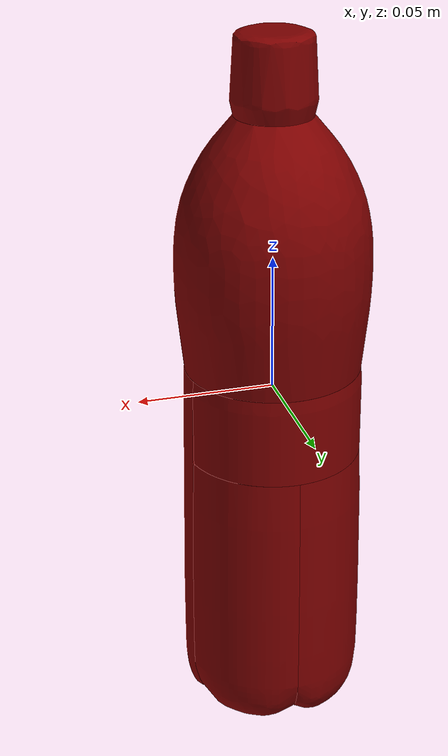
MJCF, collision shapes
<mujoco model="bottled_water_2">
  <asset>
    <mesh file="visual/model_normalized_0.obj" name="model_normalized_0_vis" scale="0.25742242105244 0.25742242105244 0.25742242105244" refquat="1.0 0.0 0.0 0.0" />
    <mesh file="visual/model_normalized_1.obj" name="model_normalized_1_vis" scale="0.25742242105244 0.25742242105244 0.25742242105244" refquat="1.0 0.0 0.0 0.0" />
    <mesh file="visual/model_normalized_2.obj" name="model_normalized_2_vis" scale="0.25742242105244 0.25742242105244 0.25742242105244" refquat="1.0 0.0 0.0 0.0" />
    <texture type="2d" name="image3" file="visual/image3.png" />
    <material name="Plastic_-_regular" specular="0.5" shininess="0.809999997" rgba="0.90 0.90 0.90 0.55" />
    <material name="label_1" texture="image3" specular="0.5" shininess="0.25" />
    <material name="label_indigo_plastic" specular="0.5" shininess="0.359999993" rgba="0.004 0 0.365 1" />
    <mesh file="collision/collision_mesh_collision_0.obj" name="bottled_collision_mesh_0" scale="0.25742242105244 0.25742242105244 0.25742242105244" refquat="1.0 0.0 0.0 0.0" />
    <mesh file="collision/collision_mesh_collision_1.obj" name="bottled_collision_mesh_1" scale="0.25742242105244 0.25742242105244 0.25742242105244" refquat="1.0 0.0 0.0 0.0" />
    <mesh file="collision/collision_mesh_collision_2.obj" name="bottled_collision_mesh_2" scale="0.25742242105244 0.25742242105244 0.25742242105244" refquat="1.0 0.0 0.0 0.0" />
    <mesh file="collision/collision_mesh_collision_3.obj" name="bottled_collision_mesh_3" scale="0.25742242105244 0.25742242105244 0.25742242105244" refquat="1.0 0.0 0.0 0.0" />
    <mesh file="collision/collision_mesh_collision_4.obj" name="bottled_collision_mesh_4" scale="0.25742242105244 0.25742242105244 0.25742242105244" refquat="1.0 0.0 0.0 0.0" />
    <mesh file="collision/collision_mesh_collision_5.obj" name="bottled_collision_mesh_5" scale="0.25742242105244 0.25742242105244 0.25742242105244" refquat="1.0 0.0 0.0 0.0" />
    <mesh file="collision/collision_mesh_collision_6.obj" name="bottled_collision_mesh_6" scale="0.25742242105244 0.25742242105244 0.25742242105244" refquat="1.0 0.0 0.0 0.0" />
    <mesh file="collision/collision_mesh_collision_7.obj" name="bottled_collision_mesh_7" scale="0.25742242105244 0.25742242105244 0.25742242105244" refquat="1.0 0.0 0.0 0.0" />
  </asset>
  <default>
    <default class="region">
      <geom group="1" conaffinity="0" contype="0" rgba="0 1 0 0" />
    </default>
    <default class="collision">
      <geom group="0" rgba="0.5 0 0 0.5" density="1000.0" />
    </default>
  </default>
  <worldbody>
    <body>
      <body name="object">
        <geom solimp="0.998 0.998 0.001" solref="0.001 1" density="100" friction="0.95 0.3 0.1" type="mesh" mesh="model_normalized_0_vis" conaffinity="0" contype="0" group="1" material="label_1" />
        <geom solimp="0.998 0.998 0.001" solref="0.001 1" density="100" friction="0.95 0.3 0.1" type="mesh" mesh="model_normalized_1_vis" conaffinity="0" contype="0" group="1" material="label_indigo_plastic" />
        <geom solimp="0.998 0.998 0.001" solref="0.001 1" density="100" friction="0.95 0.3 0.1" type="mesh" mesh="model_normalized_2_vis" conaffinity="0" contype="0" group="1" material="Plastic_-_regular" />
        <geom class="region" name="reg_bbox" type="box" pos="1.6388798436302943e-05 0.00015193071290514986 0.00023568438470665266" size="0.03200608128291934 0.033455961585012996 0.128" />
        <geom mesh="bottled_collision_mesh_0" type="mesh" class="collision" />
        <geom mesh="bottled_collision_mesh_1" type="mesh" class="collision" />
        <geom mesh="bottled_collision_mesh_2" type="mesh" class="collision" />
        <geom mesh="bottled_collision_mesh_3" type="mesh" class="collision" />
        <geom mesh="bottled_collision_mesh_4" type="mesh" class="collision" />
        <geom mesh="bottled_collision_mesh_5" type="mesh" class="collision" />
        <geom mesh="bottled_collision_mesh_6" type="mesh" class="collision" />
        <geom mesh="bottled_collision_mesh_7" type="mesh" class="collision" />
      </body>
      <site name="bottom_site" pos="0 0 -0.12776431561529336" size="0.005" rgba="0 0 0 0" />
      <site name="top_site" pos="0 0 0.12823568438470664" size="0.005" rgba="0 0 0 0" />
      <site name="horizontal_radius_site" pos="0.033455961585012996 0 0" size="0.005" rgba="0 0 0 0" />
    </body>
  </worldbody>
</mujoco>
